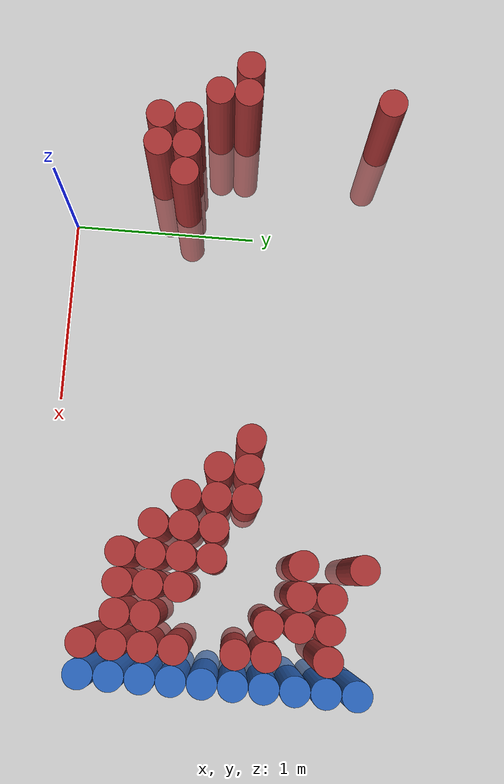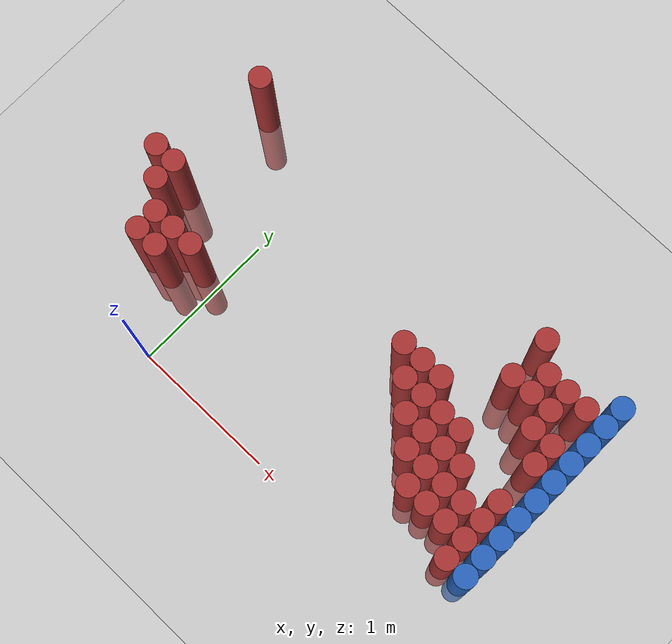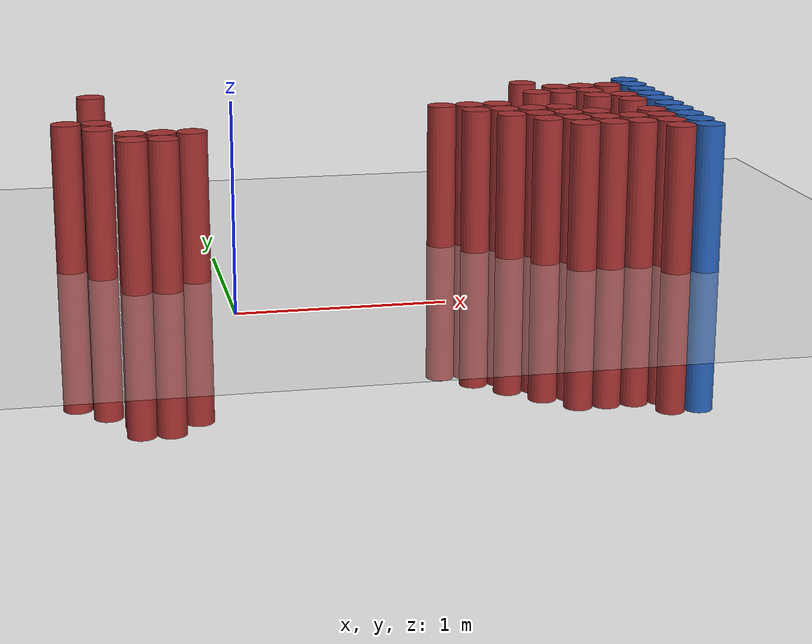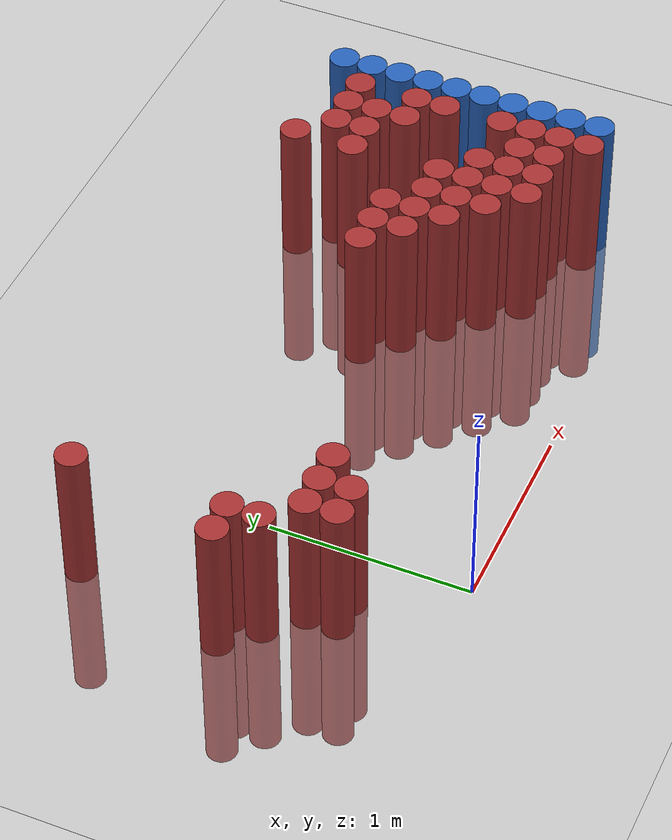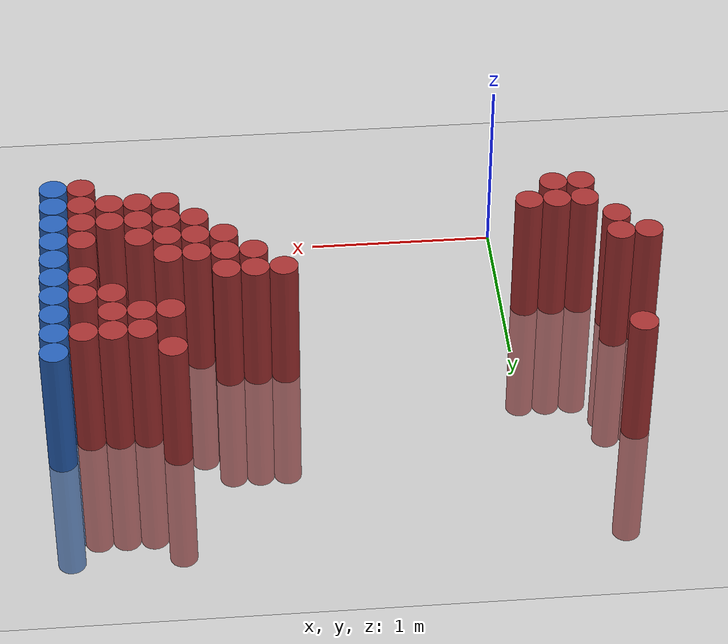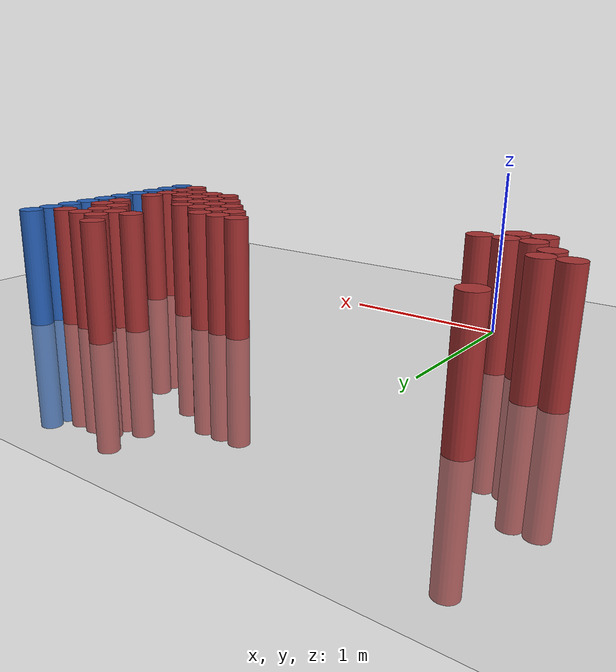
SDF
<sdf version="1.6">
 <world name="default">
  <model name="ground_plane">
   <static>1</static>
   <link name="link">
    <collision name="collision">
     <geometry><plane><normal>0 0 1</normal><size>100 100</size></plane></geometry>
     <surface><friction><ode><mu>100</mu><mu2>50</mu2></ode></friction></surface>
    </collision>
    <visual name="visual">
     <cast_shadows>0</cast_shadows>
     <geometry><plane><normal>0 0 1</normal><size>100 100</size></plane></geometry>
     <material>
      <script><uri>file://media/materials/scripts/gazebo.material</uri><name>Gazebo/Grey</name></script>
     </material>
    </visual>
   </link>
  </model>
  <model name="unit_cylinder_162">
   <static>1</static>
   <pose>-0.725000 0.925000 0.000000 0.000000 0.000000 0.000000</pose>
   <link name="link">
    <inertial>
     <mass>1</mass>
     <inertia><ixx>0.145833</ixx><ixy>0</ixy><ixz>0</ixz><iyy>0.145833</iyy><iyz>0</iyz><izz>0.125</izz></inertia>
    </inertial>
    <collision name="collision">
     <geometry><cylinder><radius>0.075000</radius><length>1.5</length></cylinder></geometry>
    </collision>
    <visual name="visual">
     <geometry><cylinder><radius>0.075000</radius><length>1.5</length></cylinder></geometry>
     <material>
      <ambient>0.648000 0.192000 0.192000 1</ambient>
      <diffuse>0.648000 0.192000 0.192000 1</diffuse>
     </material>
     <material>
      <script><name>Gazebo/Grey</name><uri>file://media/materials/scripts/gazebo.material</uri></script>
     </material>
    </visual>
   </link>
  </model>
  <model name="unit_cylinder_167">
   <static>1</static>
   <pose>-0.575000 0.775000 0.000000 0.000000 0.000000 0.000000</pose>
   <link name="link">
    <inertial>
     <mass>1</mass>
     <inertia><ixx>0.145833</ixx><ixy>0</ixy><ixz>0</ixz><iyy>0.145833</iyy><iyz>0</iyz><izz>0.125</izz></inertia>
    </inertial>
    <collision name="collision">
     <geometry><cylinder><radius>0.075000</radius><length>1.5</length></cylinder></geometry>
    </collision>
    <visual name="visual">
     <geometry><cylinder><radius>0.075000</radius><length>1.5</length></cylinder></geometry>
     <material>
      <ambient>0.648000 0.192000 0.192000 1</ambient>
      <diffuse>0.648000 0.192000 0.192000 1</diffuse>
     </material>
     <material>
      <script><name>Gazebo/Grey</name><uri>file://media/materials/scripts/gazebo.material</uri></script>
     </material>
    </visual>
   </link>
  </model>
  <model name="unit_cylinder_168">
   <static>1</static>
   <pose>-0.575000 0.925000 0.000000 0.000000 0.000000 0.000000</pose>
   <link name="link">
    <inertial>
     <mass>1</mass>
     <inertia><ixx>0.145833</ixx><ixy>0</ixy><ixz>0</ixz><iyy>0.145833</iyy><iyz>0</iyz><izz>0.125</izz></inertia>
    </inertial>
    <collision name="collision">
     <geometry><cylinder><radius>0.075000</radius><length>1.5</length></cylinder></geometry>
    </collision>
    <visual name="visual">
     <geometry><cylinder><radius>0.075000</radius><length>1.5</length></cylinder></geometry>
     <material>
      <ambient>0.648000 0.192000 0.192000 1</ambient>
      <diffuse>0.648000 0.192000 0.192000 1</diffuse>
     </material>
     <material>
      <script><name>Gazebo/Grey</name><uri>file://media/materials/scripts/gazebo.material</uri></script>
     </material>
    </visual>
   </link>
  </model>
  <model name="unit_cylinder_169">
   <static>1</static>
   <pose>-0.575000 1.675000 0.000000 0.000000 0.000000 0.000000</pose>
   <link name="link">
    <inertial>
     <mass>1</mass>
     <inertia><ixx>0.145833</ixx><ixy>0</ixy><ixz>0</ixz><iyy>0.145833</iyy><iyz>0</iyz><izz>0.125</izz></inertia>
    </inertial>
    <collision name="collision">
     <geometry><cylinder><radius>0.075000</radius><length>1.5</length></cylinder></geometry>
    </collision>
    <visual name="visual">
     <geometry><cylinder><radius>0.075000</radius><length>1.5</length></cylinder></geometry>
     <material>
      <ambient>0.648000 0.192000 0.192000 1</ambient>
      <diffuse>0.648000 0.192000 0.192000 1</diffuse>
     </material>
     <material>
      <script><name>Gazebo/Grey</name><uri>file://media/materials/scripts/gazebo.material</uri></script>
     </material>
    </visual>
   </link>
  </model>
  <model name="unit_cylinder_171">
   <static>1</static>
   <pose>-0.425000 0.475000 0.000000 0.000000 0.000000 0.000000</pose>
   <link name="link">
    <inertial>
     <mass>1</mass>
     <inertia><ixx>0.145833</ixx><ixy>0</ixy><ixz>0</ixz><iyy>0.145833</iyy><iyz>0</iyz><izz>0.125</izz></inertia>
    </inertial>
    <collision name="collision">
     <geometry><cylinder><radius>0.075000</radius><length>1.5</length></cylinder></geometry>
    </collision>
    <visual name="visual">
     <geometry><cylinder><radius>0.075000</radius><length>1.5</length></cylinder></geometry>
     <material>
      <ambient>0.648000 0.192000 0.192000 1</ambient>
      <diffuse>0.648000 0.192000 0.192000 1</diffuse>
     </material>
     <material>
      <script><name>Gazebo/Grey</name><uri>file://media/materials/scripts/gazebo.material</uri></script>
     </material>
    </visual>
   </link>
  </model>
  <model name="unit_cylinder_172">
   <static>1</static>
   <pose>-0.425000 0.625000 0.000000 0.000000 0.000000 0.000000</pose>
   <link name="link">
    <inertial>
     <mass>1</mass>
     <inertia><ixx>0.145833</ixx><ixy>0</ixy><ixz>0</ixz><iyy>0.145833</iyy><iyz>0</iyz><izz>0.125</izz></inertia>
    </inertial>
    <collision name="collision">
     <geometry><cylinder><radius>0.075000</radius><length>1.5</length></cylinder></geometry>
    </collision>
    <visual name="visual">
     <geometry><cylinder><radius>0.075000</radius><length>1.5</length></cylinder></geometry>
     <material>
      <ambient>0.648000 0.192000 0.192000 1</ambient>
      <diffuse>0.648000 0.192000 0.192000 1</diffuse>
     </material>
     <material>
      <script><name>Gazebo/Grey</name><uri>file://media/materials/scripts/gazebo.material</uri></script>
     </material>
    </visual>
   </link>
  </model>
  <model name="unit_cylinder_175">
   <static>1</static>
   <pose>-0.275000 0.475000 0.000000 0.000000 0.000000 0.000000</pose>
   <link name="link">
    <inertial>
     <mass>1</mass>
     <inertia><ixx>0.145833</ixx><ixy>0</ixy><ixz>0</ixz><iyy>0.145833</iyy><iyz>0</iyz><izz>0.125</izz></inertia>
    </inertial>
    <collision name="collision">
     <geometry><cylinder><radius>0.075000</radius><length>1.5</length></cylinder></geometry>
    </collision>
    <visual name="visual">
     <geometry><cylinder><radius>0.075000</radius><length>1.5</length></cylinder></geometry>
     <material>
      <ambient>0.648000 0.192000 0.192000 1</ambient>
      <diffuse>0.648000 0.192000 0.192000 1</diffuse>
     </material>
     <material>
      <script><name>Gazebo/Grey</name><uri>file://media/materials/scripts/gazebo.material</uri></script>
     </material>
    </visual>
   </link>
  </model>
  <model name="unit_cylinder_176">
   <static>1</static>
   <pose>-0.275000 0.625000 0.000000 0.000000 0.000000 0.000000</pose>
   <link name="link">
    <inertial>
     <mass>1</mass>
     <inertia><ixx>0.145833</ixx><ixy>0</ixy><ixz>0</ixz><iyy>0.145833</iyy><iyz>0</iyz><izz>0.125</izz></inertia>
    </inertial>
    <collision name="collision">
     <geometry><cylinder><radius>0.075000</radius><length>1.5</length></cylinder></geometry>
    </collision>
    <visual name="visual">
     <geometry><cylinder><radius>0.075000</radius><length>1.5</length></cylinder></geometry>
     <material>
      <ambient>0.648000 0.192000 0.192000 1</ambient>
      <diffuse>0.648000 0.192000 0.192000 1</diffuse>
     </material>
     <material>
      <script><name>Gazebo/Grey</name><uri>file://media/materials/scripts/gazebo.material</uri></script>
     </material>
    </visual>
   </link>
  </model>
  <model name="unit_cylinder_178">
   <static>1</static>
   <pose>-0.125000 0.625000 0.000000 0.000000 0.000000 0.000000</pose>
   <link name="link">
    <inertial>
     <mass>1</mass>
     <inertia><ixx>0.145833</ixx><ixy>0</ixy><ixz>0</ixz><iyy>0.145833</iyy><iyz>0</iyz><izz>0.125</izz></inertia>
    </inertial>
    <collision name="collision">
     <geometry><cylinder><radius>0.075000</radius><length>1.5</length></cylinder></geometry>
    </collision>
    <visual name="visual">
     <geometry><cylinder><radius>0.075000</radius><length>1.5</length></cylinder></geometry>
     <material>
      <ambient>0.648000 0.192000 0.192000 1</ambient>
      <diffuse>0.648000 0.192000 0.192000 1</diffuse>
     </material>
     <material>
      <script><name>Gazebo/Grey</name><uri>file://media/materials/scripts/gazebo.material</uri></script>
     </material>
    </visual>
   </link>
  </model>
  <model name="unit_cylinder_182">
   <static>1</static>
   <pose>1.225000 1.075000 0.000000 0.000000 0.000000 0.000000</pose>
   <link name="link">
    <inertial>
     <mass>1</mass>
     <inertia><ixx>0.145833</ixx><ixy>0</ixy><ixz>0</ixz><iyy>0.145833</iyy><iyz>0</iyz><izz>0.125</izz></inertia>
    </inertial>
    <collision name="collision">
     <geometry><cylinder><radius>0.075000</radius><length>1.5</length></cylinder></geometry>
    </collision>
    <visual name="visual">
     <geometry><cylinder><radius>0.075000</radius><length>1.5</length></cylinder></geometry>
     <material>
      <ambient>0.648000 0.192000 0.192000 1</ambient>
      <diffuse>0.648000 0.192000 0.192000 1</diffuse>
     </material>
     <material>
      <script><name>Gazebo/Grey</name><uri>file://media/materials/scripts/gazebo.material</uri></script>
     </material>
    </visual>
   </link>
  </model>
  <model name="unit_cylinder_183">
   <static>1</static>
   <pose>1.375000 0.925000 0.000000 0.000000 0.000000 0.000000</pose>
   <link name="link">
    <inertial>
     <mass>1</mass>
     <inertia><ixx>0.145833</ixx><ixy>0</ixy><ixz>0</ixz><iyy>0.145833</iyy><iyz>0</iyz><izz>0.125</izz></inertia>
    </inertial>
    <collision name="collision">
     <geometry><cylinder><radius>0.075000</radius><length>1.5</length></cylinder></geometry>
    </collision>
    <visual name="visual">
     <geometry><cylinder><radius>0.075000</radius><length>1.5</length></cylinder></geometry>
     <material>
      <ambient>0.648000 0.192000 0.192000 1</ambient>
      <diffuse>0.648000 0.192000 0.192000 1</diffuse>
     </material>
     <material>
      <script><name>Gazebo/Grey</name><uri>file://media/materials/scripts/gazebo.material</uri></script>
     </material>
    </visual>
   </link>
  </model>
  <model name="unit_cylinder_184">
   <static>1</static>
   <pose>1.375000 1.075000 0.000000 0.000000 0.000000 0.000000</pose>
   <link name="link">
    <inertial>
     <mass>1</mass>
     <inertia><ixx>0.145833</ixx><ixy>0</ixy><ixz>0</ixz><iyy>0.145833</iyy><iyz>0</iyz><izz>0.125</izz></inertia>
    </inertial>
    <collision name="collision">
     <geometry><cylinder><radius>0.075000</radius><length>1.5</length></cylinder></geometry>
    </collision>
    <visual name="visual">
     <geometry><cylinder><radius>0.075000</radius><length>1.5</length></cylinder></geometry>
     <material>
      <ambient>0.648000 0.192000 0.192000 1</ambient>
      <diffuse>0.648000 0.192000 0.192000 1</diffuse>
     </material>
     <material>
      <script><name>Gazebo/Grey</name><uri>file://media/materials/scripts/gazebo.material</uri></script>
     </material>
    </visual>
   </link>
  </model>
  <model name="unit_cylinder_185">
   <static>1</static>
   <pose>1.525000 0.775000 0.000000 0.000000 0.000000 0.000000</pose>
   <link name="link">
    <inertial>
     <mass>1</mass>
     <inertia><ixx>0.145833</ixx><ixy>0</ixy><ixz>0</ixz><iyy>0.145833</iyy><iyz>0</iyz><izz>0.125</izz></inertia>
    </inertial>
    <collision name="collision">
     <geometry><cylinder><radius>0.075000</radius><length>1.5</length></cylinder></geometry>
    </collision>
    <visual name="visual">
     <geometry><cylinder><radius>0.075000</radius><length>1.5</length></cylinder></geometry>
     <material>
      <ambient>0.648000 0.192000 0.192000 1</ambient>
      <diffuse>0.648000 0.192000 0.192000 1</diffuse>
     </material>
     <material>
      <script><name>Gazebo/Grey</name><uri>file://media/materials/scripts/gazebo.material</uri></script>
     </material>
    </visual>
   </link>
  </model>
  <model name="unit_cylinder_186">
   <static>1</static>
   <pose>1.525000 0.925000 0.000000 0.000000 0.000000 0.000000</pose>
   <link name="link">
    <inertial>
     <mass>1</mass>
     <inertia><ixx>0.145833</ixx><ixy>0</ixy><ixz>0</ixz><iyy>0.145833</iyy><iyz>0</iyz><izz>0.125</izz></inertia>
    </inertial>
    <collision name="collision">
     <geometry><cylinder><radius>0.075000</radius><length>1.5</length></cylinder></geometry>
    </collision>
    <visual name="visual">
     <geometry><cylinder><radius>0.075000</radius><length>1.5</length></cylinder></geometry>
     <material>
      <ambient>0.648000 0.192000 0.192000 1</ambient>
      <diffuse>0.648000 0.192000 0.192000 1</diffuse>
     </material>
     <material>
      <script><name>Gazebo/Grey</name><uri>file://media/materials/scripts/gazebo.material</uri></script>
     </material>
    </visual>
   </link>
  </model>
  <model name="unit_cylinder_187">
   <static>1</static>
   <pose>1.525000 1.075000 0.000000 0.000000 0.000000 0.000000</pose>
   <link name="link">
    <inertial>
     <mass>1</mass>
     <inertia><ixx>0.145833</ixx><ixy>0</ixy><ixz>0</ixz><iyy>0.145833</iyy><iyz>0</iyz><izz>0.125</izz></inertia>
    </inertial>
    <collision name="collision">
     <geometry><cylinder><radius>0.075000</radius><length>1.5</length></cylinder></geometry>
    </collision>
    <visual name="visual">
     <geometry><cylinder><radius>0.075000</radius><length>1.5</length></cylinder></geometry>
     <material>
      <ambient>0.648000 0.192000 0.192000 1</ambient>
      <diffuse>0.648000 0.192000 0.192000 1</diffuse>
     </material>
     <material>
      <script><name>Gazebo/Grey</name><uri>file://media/materials/scripts/gazebo.material</uri></script>
     </material>
    </visual>
   </link>
  </model>
  <model name="unit_cylinder_188">
   <static>1</static>
   <pose>1.675000 0.625000 0.000000 0.000000 0.000000 0.000000</pose>
   <link name="link">
    <inertial>
     <mass>1</mass>
     <inertia><ixx>0.145833</ixx><ixy>0</ixy><ixz>0</ixz><iyy>0.145833</iyy><iyz>0</iyz><izz>0.125</izz></inertia>
    </inertial>
    <collision name="collision">
     <geometry><cylinder><radius>0.075000</radius><length>1.5</length></cylinder></geometry>
    </collision>
    <visual name="visual">
     <geometry><cylinder><radius>0.075000</radius><length>1.5</length></cylinder></geometry>
     <material>
      <ambient>0.648000 0.192000 0.192000 1</ambient>
      <diffuse>0.648000 0.192000 0.192000 1</diffuse>
     </material>
     <material>
      <script><name>Gazebo/Grey</name><uri>file://media/materials/scripts/gazebo.material</uri></script>
     </material>
    </visual>
   </link>
  </model>
  <model name="unit_cylinder_189">
   <static>1</static>
   <pose>1.675000 0.775000 0.000000 0.000000 0.000000 0.000000</pose>
   <link name="link">
    <inertial>
     <mass>1</mass>
     <inertia><ixx>0.145833</ixx><ixy>0</ixy><ixz>0</ixz><iyy>0.145833</iyy><iyz>0</iyz><izz>0.125</izz></inertia>
    </inertial>
    <collision name="collision">
     <geometry><cylinder><radius>0.075000</radius><length>1.5</length></cylinder></geometry>
    </collision>
    <visual name="visual">
     <geometry><cylinder><radius>0.075000</radius><length>1.5</length></cylinder></geometry>
     <material>
      <ambient>0.648000 0.192000 0.192000 1</ambient>
      <diffuse>0.648000 0.192000 0.192000 1</diffuse>
     </material>
     <material>
      <script><name>Gazebo/Grey</name><uri>file://media/materials/scripts/gazebo.material</uri></script>
     </material>
    </visual>
   </link>
  </model>
  <model name="unit_cylinder_190">
   <static>1</static>
   <pose>1.675000 0.925000 0.000000 0.000000 0.000000 0.000000</pose>
   <link name="link">
    <inertial>
     <mass>1</mass>
     <inertia><ixx>0.145833</ixx><ixy>0</ixy><ixz>0</ixz><iyy>0.145833</iyy><iyz>0</iyz><izz>0.125</izz></inertia>
    </inertial>
    <collision name="collision">
     <geometry><cylinder><radius>0.075000</radius><length>1.5</length></cylinder></geometry>
    </collision>
    <visual name="visual">
     <geometry><cylinder><radius>0.075000</radius><length>1.5</length></cylinder></geometry>
     <material>
      <ambient>0.648000 0.192000 0.192000 1</ambient>
      <diffuse>0.648000 0.192000 0.192000 1</diffuse>
     </material>
     <material>
      <script><name>Gazebo/Grey</name><uri>file://media/materials/scripts/gazebo.material</uri></script>
     </material>
    </visual>
   </link>
  </model>
  <model name="unit_cylinder_194">
   <static>1</static>
   <pose>1.825000 0.475000 0.000000 0.000000 0.000000 0.000000</pose>
   <link name="link">
    <inertial>
     <mass>1</mass>
     <inertia><ixx>0.145833</ixx><ixy>0</ixy><ixz>0</ixz><iyy>0.145833</iyy><iyz>0</iyz><izz>0.125</izz></inertia>
    </inertial>
    <collision name="collision">
     <geometry><cylinder><radius>0.075000</radius><length>1.5</length></cylinder></geometry>
    </collision>
    <visual name="visual">
     <geometry><cylinder><radius>0.075000</radius><length>1.5</length></cylinder></geometry>
     <material>
      <ambient>0.648000 0.192000 0.192000 1</ambient>
      <diffuse>0.648000 0.192000 0.192000 1</diffuse>
     </material>
     <material>
      <script><name>Gazebo/Grey</name><uri>file://media/materials/scripts/gazebo.material</uri></script>
     </material>
    </visual>
   </link>
  </model>
  <model name="unit_cylinder_195">
   <static>1</static>
   <pose>1.825000 0.625000 0.000000 0.000000 0.000000 0.000000</pose>
   <link name="link">
    <inertial>
     <mass>1</mass>
     <inertia><ixx>0.145833</ixx><ixy>0</ixy><ixz>0</ixz><iyy>0.145833</iyy><iyz>0</iyz><izz>0.125</izz></inertia>
    </inertial>
    <collision name="collision">
     <geometry><cylinder><radius>0.075000</radius><length>1.5</length></cylinder></geometry>
    </collision>
    <visual name="visual">
     <geometry><cylinder><radius>0.075000</radius><length>1.5</length></cylinder></geometry>
     <material>
      <ambient>0.648000 0.192000 0.192000 1</ambient>
      <diffuse>0.648000 0.192000 0.192000 1</diffuse>
     </material>
     <material>
      <script><name>Gazebo/Grey</name><uri>file://media/materials/scripts/gazebo.material</uri></script>
     </material>
    </visual>
   </link>
  </model>
  <model name="unit_cylinder_196">
   <static>1</static>
   <pose>1.825000 0.775000 0.000000 0.000000 0.000000 0.000000</pose>
   <link name="link">
    <inertial>
     <mass>1</mass>
     <inertia><ixx>0.145833</ixx><ixy>0</ixy><ixz>0</ixz><iyy>0.145833</iyy><iyz>0</iyz><izz>0.125</izz></inertia>
    </inertial>
    <collision name="collision">
     <geometry><cylinder><radius>0.075000</radius><length>1.5</length></cylinder></geometry>
    </collision>
    <visual name="visual">
     <geometry><cylinder><radius>0.075000</radius><length>1.5</length></cylinder></geometry>
     <material>
      <ambient>0.648000 0.192000 0.192000 1</ambient>
      <diffuse>0.648000 0.192000 0.192000 1</diffuse>
     </material>
     <material>
      <script><name>Gazebo/Grey</name><uri>file://media/materials/scripts/gazebo.material</uri></script>
     </material>
    </visual>
   </link>
  </model>
  <model name="unit_cylinder_197">
   <static>1</static>
   <pose>1.825000 0.925000 0.000000 0.000000 0.000000 0.000000</pose>
   <link name="link">
    <inertial>
     <mass>1</mass>
     <inertia><ixx>0.145833</ixx><ixy>0</ixy><ixz>0</ixz><iyy>0.145833</iyy><iyz>0</iyz><izz>0.125</izz></inertia>
    </inertial>
    <collision name="collision">
     <geometry><cylinder><radius>0.075000</radius><length>1.5</length></cylinder></geometry>
    </collision>
    <visual name="visual">
     <geometry><cylinder><radius>0.075000</radius><length>1.5</length></cylinder></geometry>
     <material>
      <ambient>0.648000 0.192000 0.192000 1</ambient>
      <diffuse>0.648000 0.192000 0.192000 1</diffuse>
     </material>
     <material>
      <script><name>Gazebo/Grey</name><uri>file://media/materials/scripts/gazebo.material</uri></script>
     </material>
    </visual>
   </link>
  </model>
  <model name="unit_cylinder_198">
   <static>1</static>
   <pose>1.825000 1.375000 0.000000 0.000000 0.000000 0.000000</pose>
   <link name="link">
    <inertial>
     <mass>1</mass>
     <inertia><ixx>0.145833</ixx><ixy>0</ixy><ixz>0</ixz><iyy>0.145833</iyy><iyz>0</iyz><izz>0.125</izz></inertia>
    </inertial>
    <collision name="collision">
     <geometry><cylinder><radius>0.075000</radius><length>1.5</length></cylinder></geometry>
    </collision>
    <visual name="visual">
     <geometry><cylinder><radius>0.075000</radius><length>1.5</length></cylinder></geometry>
     <material>
      <ambient>0.648000 0.192000 0.192000 1</ambient>
      <diffuse>0.648000 0.192000 0.192000 1</diffuse>
     </material>
     <material>
      <script><name>Gazebo/Grey</name><uri>file://media/materials/scripts/gazebo.material</uri></script>
     </material>
    </visual>
   </link>
  </model>
  <model name="unit_cylinder_199">
   <static>1</static>
   <pose>1.825000 1.675000 0.000000 0.000000 0.000000 0.000000</pose>
   <link name="link">
    <inertial>
     <mass>1</mass>
     <inertia><ixx>0.145833</ixx><ixy>0</ixy><ixz>0</ixz><iyy>0.145833</iyy><iyz>0</iyz><izz>0.125</izz></inertia>
    </inertial>
    <collision name="collision">
     <geometry><cylinder><radius>0.075000</radius><length>1.5</length></cylinder></geometry>
    </collision>
    <visual name="visual">
     <geometry><cylinder><radius>0.075000</radius><length>1.5</length></cylinder></geometry>
     <material>
      <ambient>0.648000 0.192000 0.192000 1</ambient>
      <diffuse>0.648000 0.192000 0.192000 1</diffuse>
     </material>
     <material>
      <script><name>Gazebo/Grey</name><uri>file://media/materials/scripts/gazebo.material</uri></script>
     </material>
    </visual>
   </link>
  </model>
  <model name="unit_cylinder_202">
   <static>1</static>
   <pose>1.975000 0.475000 0.000000 0.000000 0.000000 0.000000</pose>
   <link name="link">
    <inertial>
     <mass>1</mass>
     <inertia><ixx>0.145833</ixx><ixy>0</ixy><ixz>0</ixz><iyy>0.145833</iyy><iyz>0</iyz><izz>0.125</izz></inertia>
    </inertial>
    <collision name="collision">
     <geometry><cylinder><radius>0.075000</radius><length>1.5</length></cylinder></geometry>
    </collision>
    <visual name="visual">
     <geometry><cylinder><radius>0.075000</radius><length>1.5</length></cylinder></geometry>
     <material>
      <ambient>0.648000 0.192000 0.192000 1</ambient>
      <diffuse>0.648000 0.192000 0.192000 1</diffuse>
     </material>
     <material>
      <script><name>Gazebo/Grey</name><uri>file://media/materials/scripts/gazebo.material</uri></script>
     </material>
    </visual>
   </link>
  </model>
  <model name="unit_cylinder_203">
   <static>1</static>
   <pose>1.975000 0.625000 0.000000 0.000000 0.000000 0.000000</pose>
   <link name="link">
    <inertial>
     <mass>1</mass>
     <inertia><ixx>0.145833</ixx><ixy>0</ixy><ixz>0</ixz><iyy>0.145833</iyy><iyz>0</iyz><izz>0.125</izz></inertia>
    </inertial>
    <collision name="collision">
     <geometry><cylinder><radius>0.075000</radius><length>1.5</length></cylinder></geometry>
    </collision>
    <visual name="visual">
     <geometry><cylinder><radius>0.075000</radius><length>1.5</length></cylinder></geometry>
     <material>
      <ambient>0.648000 0.192000 0.192000 1</ambient>
      <diffuse>0.648000 0.192000 0.192000 1</diffuse>
     </material>
     <material>
      <script><name>Gazebo/Grey</name><uri>file://media/materials/scripts/gazebo.material</uri></script>
     </material>
    </visual>
   </link>
  </model>
  <model name="unit_cylinder_204">
   <static>1</static>
   <pose>1.975000 0.775000 0.000000 0.000000 0.000000 0.000000</pose>
   <link name="link">
    <inertial>
     <mass>1</mass>
     <inertia><ixx>0.145833</ixx><ixy>0</ixy><ixz>0</ixz><iyy>0.145833</iyy><iyz>0</iyz><izz>0.125</izz></inertia>
    </inertial>
    <collision name="collision">
     <geometry><cylinder><radius>0.075000</radius><length>1.5</length></cylinder></geometry>
    </collision>
    <visual name="visual">
     <geometry><cylinder><radius>0.075000</radius><length>1.5</length></cylinder></geometry>
     <material>
      <ambient>0.648000 0.192000 0.192000 1</ambient>
      <diffuse>0.648000 0.192000 0.192000 1</diffuse>
     </material>
     <material>
      <script><name>Gazebo/Grey</name><uri>file://media/materials/scripts/gazebo.material</uri></script>
     </material>
    </visual>
   </link>
  </model>
  <model name="unit_cylinder_205">
   <static>1</static>
   <pose>1.975000 1.375000 0.000000 0.000000 0.000000 0.000000</pose>
   <link name="link">
    <inertial>
     <mass>1</mass>
     <inertia><ixx>0.145833</ixx><ixy>0</ixy><ixz>0</ixz><iyy>0.145833</iyy><iyz>0</iyz><izz>0.125</izz></inertia>
    </inertial>
    <collision name="collision">
     <geometry><cylinder><radius>0.075000</radius><length>1.5</length></cylinder></geometry>
    </collision>
    <visual name="visual">
     <geometry><cylinder><radius>0.075000</radius><length>1.5</length></cylinder></geometry>
     <material>
      <ambient>0.648000 0.192000 0.192000 1</ambient>
      <diffuse>0.648000 0.192000 0.192000 1</diffuse>
     </material>
     <material>
      <script><name>Gazebo/Grey</name><uri>file://media/materials/scripts/gazebo.material</uri></script>
     </material>
    </visual>
   </link>
  </model>
  <model name="unit_cylinder_206">
   <static>1</static>
   <pose>1.975000 1.525000 0.000000 0.000000 0.000000 0.000000</pose>
   <link name="link">
    <inertial>
     <mass>1</mass>
     <inertia><ixx>0.145833</ixx><ixy>0</ixy><ixz>0</ixz><iyy>0.145833</iyy><iyz>0</iyz><izz>0.125</izz></inertia>
    </inertial>
    <collision name="collision">
     <geometry><cylinder><radius>0.075000</radius><length>1.5</length></cylinder></geometry>
    </collision>
    <visual name="visual">
     <geometry><cylinder><radius>0.075000</radius><length>1.5</length></cylinder></geometry>
     <material>
      <ambient>0.648000 0.192000 0.192000 1</ambient>
      <diffuse>0.648000 0.192000 0.192000 1</diffuse>
     </material>
     <material>
      <script><name>Gazebo/Grey</name><uri>file://media/materials/scripts/gazebo.material</uri></script>
     </material>
    </visual>
   </link>
  </model>
  <model name="unit_cylinder_207">
   <static>1</static>
   <pose>2.125000 0.475000 0.000000 0.000000 0.000000 0.000000</pose>
   <link name="link">
    <inertial>
     <mass>1</mass>
     <inertia><ixx>0.145833</ixx><ixy>0</ixy><ixz>0</ixz><iyy>0.145833</iyy><iyz>0</iyz><izz>0.125</izz></inertia>
    </inertial>
    <collision name="collision">
     <geometry><cylinder><radius>0.075000</radius><length>1.5</length></cylinder></geometry>
    </collision>
    <visual name="visual">
     <geometry><cylinder><radius>0.075000</radius><length>1.5</length></cylinder></geometry>
     <material>
      <ambient>0.648000 0.192000 0.192000 1</ambient>
      <diffuse>0.648000 0.192000 0.192000 1</diffuse>
     </material>
     <material>
      <script><name>Gazebo/Grey</name><uri>file://media/materials/scripts/gazebo.material</uri></script>
     </material>
    </visual>
   </link>
  </model>
  <model name="unit_cylinder_208">
   <static>1</static>
   <pose>2.125000 0.625000 0.000000 0.000000 0.000000 0.000000</pose>
   <link name="link">
    <inertial>
     <mass>1</mass>
     <inertia><ixx>0.145833</ixx><ixy>0</ixy><ixz>0</ixz><iyy>0.145833</iyy><iyz>0</iyz><izz>0.125</izz></inertia>
    </inertial>
    <collision name="collision">
     <geometry><cylinder><radius>0.075000</radius><length>1.5</length></cylinder></geometry>
    </collision>
    <visual name="visual">
     <geometry><cylinder><radius>0.075000</radius><length>1.5</length></cylinder></geometry>
     <material>
      <ambient>0.648000 0.192000 0.192000 1</ambient>
      <diffuse>0.648000 0.192000 0.192000 1</diffuse>
     </material>
     <material>
      <script><name>Gazebo/Grey</name><uri>file://media/materials/scripts/gazebo.material</uri></script>
     </material>
    </visual>
   </link>
  </model>
  <model name="unit_cylinder_209">
   <static>1</static>
   <pose>2.125000 1.225000 0.000000 0.000000 0.000000 0.000000</pose>
   <link name="link">
    <inertial>
     <mass>1</mass>
     <inertia><ixx>0.145833</ixx><ixy>0</ixy><ixz>0</ixz><iyy>0.145833</iyy><iyz>0</iyz><izz>0.125</izz></inertia>
    </inertial>
    <collision name="collision">
     <geometry><cylinder><radius>0.075000</radius><length>1.5</length></cylinder></geometry>
    </collision>
    <visual name="visual">
     <geometry><cylinder><radius>0.075000</radius><length>1.5</length></cylinder></geometry>
     <material>
      <ambient>0.648000 0.192000 0.192000 1</ambient>
      <diffuse>0.648000 0.192000 0.192000 1</diffuse>
     </material>
     <material>
      <script><name>Gazebo/Grey</name><uri>file://media/materials/scripts/gazebo.material</uri></script>
     </material>
    </visual>
   </link>
  </model>
  <model name="unit_cylinder_210">
   <static>1</static>
   <pose>2.125000 1.375000 0.000000 0.000000 0.000000 0.000000</pose>
   <link name="link">
    <inertial>
     <mass>1</mass>
     <inertia><ixx>0.145833</ixx><ixy>0</ixy><ixz>0</ixz><iyy>0.145833</iyy><iyz>0</iyz><izz>0.125</izz></inertia>
    </inertial>
    <collision name="collision">
     <geometry><cylinder><radius>0.075000</radius><length>1.5</length></cylinder></geometry>
    </collision>
    <visual name="visual">
     <geometry><cylinder><radius>0.075000</radius><length>1.5</length></cylinder></geometry>
     <material>
      <ambient>0.648000 0.192000 0.192000 1</ambient>
      <diffuse>0.648000 0.192000 0.192000 1</diffuse>
     </material>
     <material>
      <script><name>Gazebo/Grey</name><uri>file://media/materials/scripts/gazebo.material</uri></script>
     </material>
    </visual>
   </link>
  </model>
  <model name="unit_cylinder_211">
   <static>1</static>
   <pose>2.125000 1.525000 0.000000 0.000000 0.000000 0.000000</pose>
   <link name="link">
    <inertial>
     <mass>1</mass>
     <inertia><ixx>0.145833</ixx><ixy>0</ixy><ixz>0</ixz><iyy>0.145833</iyy><iyz>0</iyz><izz>0.125</izz></inertia>
    </inertial>
    <collision name="collision">
     <geometry><cylinder><radius>0.075000</radius><length>1.5</length></cylinder></geometry>
    </collision>
    <visual name="visual">
     <geometry><cylinder><radius>0.075000</radius><length>1.5</length></cylinder></geometry>
     <material>
      <ambient>0.648000 0.192000 0.192000 1</ambient>
      <diffuse>0.648000 0.192000 0.192000 1</diffuse>
     </material>
     <material>
      <script><name>Gazebo/Grey</name><uri>file://media/materials/scripts/gazebo.material</uri></script>
     </material>
    </visual>
   </link>
  </model>
  <model name="unit_cylinder_212">
   <static>1</static>
   <pose>2.275000 0.325000 0.000000 0.000000 0.000000 0.000000</pose>
   <link name="link">
    <inertial>
     <mass>1</mass>
     <inertia><ixx>0.145833</ixx><ixy>0</ixy><ixz>0</ixz><iyy>0.145833</iyy><iyz>0</iyz><izz>0.125</izz></inertia>
    </inertial>
    <collision name="collision">
     <geometry><cylinder><radius>0.075000</radius><length>1.5</length></cylinder></geometry>
    </collision>
    <visual name="visual">
     <geometry><cylinder><radius>0.075000</radius><length>1.5</length></cylinder></geometry>
     <material>
      <ambient>0.648000 0.192000 0.192000 1</ambient>
      <diffuse>0.648000 0.192000 0.192000 1</diffuse>
     </material>
     <material>
      <script><name>Gazebo/Grey</name><uri>file://media/materials/scripts/gazebo.material</uri></script>
     </material>
    </visual>
   </link>
  </model>
  <model name="unit_cylinder_213">
   <static>1</static>
   <pose>2.275000 0.475000 0.000000 0.000000 0.000000 0.000000</pose>
   <link name="link">
    <inertial>
     <mass>1</mass>
     <inertia><ixx>0.145833</ixx><ixy>0</ixy><ixz>0</ixz><iyy>0.145833</iyy><iyz>0</iyz><izz>0.125</izz></inertia>
    </inertial>
    <collision name="collision">
     <geometry><cylinder><radius>0.075000</radius><length>1.5</length></cylinder></geometry>
    </collision>
    <visual name="visual">
     <geometry><cylinder><radius>0.075000</radius><length>1.5</length></cylinder></geometry>
     <material>
      <ambient>0.648000 0.192000 0.192000 1</ambient>
      <diffuse>0.648000 0.192000 0.192000 1</diffuse>
     </material>
     <material>
      <script><name>Gazebo/Grey</name><uri>file://media/materials/scripts/gazebo.material</uri></script>
     </material>
    </visual>
   </link>
  </model>
  <model name="unit_cylinder_214">
   <static>1</static>
   <pose>2.275000 0.625000 0.000000 0.000000 0.000000 0.000000</pose>
   <link name="link">
    <inertial>
     <mass>1</mass>
     <inertia><ixx>0.145833</ixx><ixy>0</ixy><ixz>0</ixz><iyy>0.145833</iyy><iyz>0</iyz><izz>0.125</izz></inertia>
    </inertial>
    <collision name="collision">
     <geometry><cylinder><radius>0.075000</radius><length>1.5</length></cylinder></geometry>
    </collision>
    <visual name="visual">
     <geometry><cylinder><radius>0.075000</radius><length>1.5</length></cylinder></geometry>
     <material>
      <ambient>0.648000 0.192000 0.192000 1</ambient>
      <diffuse>0.648000 0.192000 0.192000 1</diffuse>
     </material>
     <material>
      <script><name>Gazebo/Grey</name><uri>file://media/materials/scripts/gazebo.material</uri></script>
     </material>
    </visual>
   </link>
  </model>
  <model name="unit_cylinder_215">
   <static>1</static>
   <pose>2.275000 0.775000 0.000000 0.000000 0.000000 0.000000</pose>
   <link name="link">
    <inertial>
     <mass>1</mass>
     <inertia><ixx>0.145833</ixx><ixy>0</ixy><ixz>0</ixz><iyy>0.145833</iyy><iyz>0</iyz><izz>0.125</izz></inertia>
    </inertial>
    <collision name="collision">
     <geometry><cylinder><radius>0.075000</radius><length>1.5</length></cylinder></geometry>
    </collision>
    <visual name="visual">
     <geometry><cylinder><radius>0.075000</radius><length>1.5</length></cylinder></geometry>
     <material>
      <ambient>0.648000 0.192000 0.192000 1</ambient>
      <diffuse>0.648000 0.192000 0.192000 1</diffuse>
     </material>
     <material>
      <script><name>Gazebo/Grey</name><uri>file://media/materials/scripts/gazebo.material</uri></script>
     </material>
    </visual>
   </link>
  </model>
  <model name="unit_cylinder_216">
   <static>1</static>
   <pose>2.275000 1.075000 0.000000 0.000000 0.000000 0.000000</pose>
   <link name="link">
    <inertial>
     <mass>1</mass>
     <inertia><ixx>0.145833</ixx><ixy>0</ixy><ixz>0</ixz><iyy>0.145833</iyy><iyz>0</iyz><izz>0.125</izz></inertia>
    </inertial>
    <collision name="collision">
     <geometry><cylinder><radius>0.075000</radius><length>1.5</length></cylinder></geometry>
    </collision>
    <visual name="visual">
     <geometry><cylinder><radius>0.075000</radius><length>1.5</length></cylinder></geometry>
     <material>
      <ambient>0.648000 0.192000 0.192000 1</ambient>
      <diffuse>0.648000 0.192000 0.192000 1</diffuse>
     </material>
     <material>
      <script><name>Gazebo/Grey</name><uri>file://media/materials/scripts/gazebo.material</uri></script>
     </material>
    </visual>
   </link>
  </model>
  <model name="unit_cylinder_217">
   <static>1</static>
   <pose>2.275000 1.225000 0.000000 0.000000 0.000000 0.000000</pose>
   <link name="link">
    <inertial>
     <mass>1</mass>
     <inertia><ixx>0.145833</ixx><ixy>0</ixy><ixz>0</ixz><iyy>0.145833</iyy><iyz>0</iyz><izz>0.125</izz></inertia>
    </inertial>
    <collision name="collision">
     <geometry><cylinder><radius>0.075000</radius><length>1.5</length></cylinder></geometry>
    </collision>
    <visual name="visual">
     <geometry><cylinder><radius>0.075000</radius><length>1.5</length></cylinder></geometry>
     <material>
      <ambient>0.648000 0.192000 0.192000 1</ambient>
      <diffuse>0.648000 0.192000 0.192000 1</diffuse>
     </material>
     <material>
      <script><name>Gazebo/Grey</name><uri>file://media/materials/scripts/gazebo.material</uri></script>
     </material>
    </visual>
   </link>
  </model>
  <model name="unit_cylinder_218">
   <static>1</static>
   <pose>2.275000 1.525000 0.000000 0.000000 0.000000 0.000000</pose>
   <link name="link">
    <inertial>
     <mass>1</mass>
     <inertia><ixx>0.145833</ixx><ixy>0</ixy><ixz>0</ixz><iyy>0.145833</iyy><iyz>0</iyz><izz>0.125</izz></inertia>
    </inertial>
    <collision name="collision">
     <geometry><cylinder><radius>0.075000</radius><length>1.5</length></cylinder></geometry>
    </collision>
    <visual name="visual">
     <geometry><cylinder><radius>0.075000</radius><length>1.5</length></cylinder></geometry>
     <material>
      <ambient>0.648000 0.192000 0.192000 1</ambient>
      <diffuse>0.648000 0.192000 0.192000 1</diffuse>
     </material>
     <material>
      <script><name>Gazebo/Grey</name><uri>file://media/materials/scripts/gazebo.material</uri></script>
     </material>
    </visual>
   </link>
  </model>
  <model name="unit_cylinder_226">
   <static>1</static>
   <pose>2.425000 0.325000 0.000000 0.000000 0.000000 0.000000</pose>
   <link name="link">
    <inertial>
     <mass>1</mass>
     <inertia><ixx>0.145833</ixx><ixy>0</ixy><ixz>0</ixz><iyy>0.145833</iyy><iyz>0</iyz><izz>0.125</izz></inertia>
    </inertial>
    <collision name="collision">
     <geometry><cylinder><radius>0.075000</radius><length>1.5</length></cylinder></geometry>
    </collision>
    <visual name="visual">
     <geometry><cylinder><radius>0.075000</radius><length>1.5</length></cylinder></geometry>
     <material>
      <ambient>0.152000 0.379000 0.720000 1</ambient>
      <diffuse>0.152000 0.379000 0.720000 1</diffuse>
     </material>
     <material>
      <script><name>Gazebo/Grey</name><uri>file://media/materials/scripts/gazebo.material</uri></script>
     </material>
    </visual>
   </link>
  </model>
  <model name="unit_cylinder_227">
   <static>1</static>
   <pose>2.425000 0.475000 0.000000 0.000000 0.000000 0.000000</pose>
   <link name="link">
    <inertial>
     <mass>1</mass>
     <inertia><ixx>0.145833</ixx><ixy>0</ixy><ixz>0</ixz><iyy>0.145833</iyy><iyz>0</iyz><izz>0.125</izz></inertia>
    </inertial>
    <collision name="collision">
     <geometry><cylinder><radius>0.075000</radius><length>1.5</length></cylinder></geometry>
    </collision>
    <visual name="visual">
     <geometry><cylinder><radius>0.075000</radius><length>1.5</length></cylinder></geometry>
     <material>
      <ambient>0.152000 0.379000 0.720000 1</ambient>
      <diffuse>0.152000 0.379000 0.720000 1</diffuse>
     </material>
     <material>
      <script><name>Gazebo/Grey</name><uri>file://media/materials/scripts/gazebo.material</uri></script>
     </material>
    </visual>
   </link>
  </model>
  <model name="unit_cylinder_228">
   <static>1</static>
   <pose>2.425000 0.625000 0.000000 0.000000 0.000000 0.000000</pose>
   <link name="link">
    <inertial>
     <mass>1</mass>
     <inertia><ixx>0.145833</ixx><ixy>0</ixy><ixz>0</ixz><iyy>0.145833</iyy><iyz>0</iyz><izz>0.125</izz></inertia>
    </inertial>
    <collision name="collision">
     <geometry><cylinder><radius>0.075000</radius><length>1.5</length></cylinder></geometry>
    </collision>
    <visual name="visual">
     <geometry><cylinder><radius>0.075000</radius><length>1.5</length></cylinder></geometry>
     <material>
      <ambient>0.152000 0.379000 0.720000 1</ambient>
      <diffuse>0.152000 0.379000 0.720000 1</diffuse>
     </material>
     <material>
      <script><name>Gazebo/Grey</name><uri>file://media/materials/scripts/gazebo.material</uri></script>
     </material>
    </visual>
   </link>
  </model>
  <model name="unit_cylinder_229">
   <static>1</static>
   <pose>2.425000 0.775000 0.000000 0.000000 0.000000 0.000000</pose>
   <link name="link">
    <inertial>
     <mass>1</mass>
     <inertia><ixx>0.145833</ixx><ixy>0</ixy><ixz>0</ixz><iyy>0.145833</iyy><iyz>0</iyz><izz>0.125</izz></inertia>
    </inertial>
    <collision name="collision">
     <geometry><cylinder><radius>0.075000</radius><length>1.5</length></cylinder></geometry>
    </collision>
    <visual name="visual">
     <geometry><cylinder><radius>0.075000</radius><length>1.5</length></cylinder></geometry>
     <material>
      <ambient>0.152000 0.379000 0.720000 1</ambient>
      <diffuse>0.152000 0.379000 0.720000 1</diffuse>
     </material>
     <material>
      <script><name>Gazebo/Grey</name><uri>file://media/materials/scripts/gazebo.material</uri></script>
     </material>
    </visual>
   </link>
  </model>
  <model name="unit_cylinder_230">
   <static>1</static>
   <pose>2.425000 0.925000 0.000000 0.000000 0.000000 0.000000</pose>
   <link name="link">
    <inertial>
     <mass>1</mass>
     <inertia><ixx>0.145833</ixx><ixy>0</ixy><ixz>0</ixz><iyy>0.145833</iyy><iyz>0</iyz><izz>0.125</izz></inertia>
    </inertial>
    <collision name="collision">
     <geometry><cylinder><radius>0.075000</radius><length>1.5</length></cylinder></geometry>
    </collision>
    <visual name="visual">
     <geometry><cylinder><radius>0.075000</radius><length>1.5</length></cylinder></geometry>
     <material>
      <ambient>0.152000 0.379000 0.720000 1</ambient>
      <diffuse>0.152000 0.379000 0.720000 1</diffuse>
     </material>
     <material>
      <script><name>Gazebo/Grey</name><uri>file://media/materials/scripts/gazebo.material</uri></script>
     </material>
    </visual>
   </link>
  </model>
  <model name="unit_cylinder_231">
   <static>1</static>
   <pose>2.425000 1.075000 0.000000 0.000000 0.000000 0.000000</pose>
   <link name="link">
    <inertial>
     <mass>1</mass>
     <inertia><ixx>0.145833</ixx><ixy>0</ixy><ixz>0</ixz><iyy>0.145833</iyy><iyz>0</iyz><izz>0.125</izz></inertia>
    </inertial>
    <collision name="collision">
     <geometry><cylinder><radius>0.075000</radius><length>1.5</length></cylinder></geometry>
    </collision>
    <visual name="visual">
     <geometry><cylinder><radius>0.075000</radius><length>1.5</length></cylinder></geometry>
     <material>
      <ambient>0.152000 0.379000 0.720000 1</ambient>
      <diffuse>0.152000 0.379000 0.720000 1</diffuse>
     </material>
     <material>
      <script><name>Gazebo/Grey</name><uri>file://media/materials/scripts/gazebo.material</uri></script>
     </material>
    </visual>
   </link>
  </model>
  <model name="unit_cylinder_232">
   <static>1</static>
   <pose>2.425000 1.225000 0.000000 0.000000 0.000000 0.000000</pose>
   <link name="link">
    <inertial>
     <mass>1</mass>
     <inertia><ixx>0.145833</ixx><ixy>0</ixy><ixz>0</ixz><iyy>0.145833</iyy><iyz>0</iyz><izz>0.125</izz></inertia>
    </inertial>
    <collision name="collision">
     <geometry><cylinder><radius>0.075000</radius><length>1.5</length></cylinder></geometry>
    </collision>
    <visual name="visual">
     <geometry><cylinder><radius>0.075000</radius><length>1.5</length></cylinder></geometry>
     <material>
      <ambient>0.152000 0.379000 0.720000 1</ambient>
      <diffuse>0.152000 0.379000 0.720000 1</diffuse>
     </material>
     <material>
      <script><name>Gazebo/Grey</name><uri>file://media/materials/scripts/gazebo.material</uri></script>
     </material>
    </visual>
   </link>
  </model>
  <model name="unit_cylinder_233">
   <static>1</static>
   <pose>2.425000 1.375000 0.000000 0.000000 0.000000 0.000000</pose>
   <link name="link">
    <inertial>
     <mass>1</mass>
     <inertia><ixx>0.145833</ixx><ixy>0</ixy><ixz>0</ixz><iyy>0.145833</iyy><iyz>0</iyz><izz>0.125</izz></inertia>
    </inertial>
    <collision name="collision">
     <geometry><cylinder><radius>0.075000</radius><length>1.5</length></cylinder></geometry>
    </collision>
    <visual name="visual">
     <geometry><cylinder><radius>0.075000</radius><length>1.5</length></cylinder></geometry>
     <material>
      <ambient>0.152000 0.379000 0.720000 1</ambient>
      <diffuse>0.152000 0.379000 0.720000 1</diffuse>
     </material>
     <material>
      <script><name>Gazebo/Grey</name><uri>file://media/materials/scripts/gazebo.material</uri></script>
     </material>
    </visual>
   </link>
  </model>
  <model name="unit_cylinder_234">
   <static>1</static>
   <pose>2.425000 1.525000 0.000000 0.000000 0.000000 0.000000</pose>
   <link name="link">
    <inertial>
     <mass>1</mass>
     <inertia><ixx>0.145833</ixx><ixy>0</ixy><ixz>0</ixz><iyy>0.145833</iyy><iyz>0</iyz><izz>0.125</izz></inertia>
    </inertial>
    <collision name="collision">
     <geometry><cylinder><radius>0.075000</radius><length>1.5</length></cylinder></geometry>
    </collision>
    <visual name="visual">
     <geometry><cylinder><radius>0.075000</radius><length>1.5</length></cylinder></geometry>
     <material>
      <ambient>0.152000 0.379000 0.720000 1</ambient>
      <diffuse>0.152000 0.379000 0.720000 1</diffuse>
     </material>
     <material>
      <script><name>Gazebo/Grey</name><uri>file://media/materials/scripts/gazebo.material</uri></script>
     </material>
    </visual>
   </link>
  </model>
  <model name="unit_cylinder_235">
   <static>1</static>
   <pose>2.425000 1.675000 0.000000 0.000000 0.000000 0.000000</pose>
   <link name="link">
    <inertial>
     <mass>1</mass>
     <inertia><ixx>0.145833</ixx><ixy>0</ixy><ixz>0</ixz><iyy>0.145833</iyy><iyz>0</iyz><izz>0.125</izz></inertia>
    </inertial>
    <collision name="collision">
     <geometry><cylinder><radius>0.075000</radius><length>1.5</length></cylinder></geometry>
    </collision>
    <visual name="visual">
     <geometry><cylinder><radius>0.075000</radius><length>1.5</length></cylinder></geometry>
     <material>
      <ambient>0.152000 0.379000 0.720000 1</ambient>
      <diffuse>0.152000 0.379000 0.720000 1</diffuse>
     </material>
     <material>
      <script><name>Gazebo/Grey</name><uri>file://media/materials/scripts/gazebo.material</uri></script>
     </material>
    </visual>
   </link>
  </model>
 </world>
</sdf>
